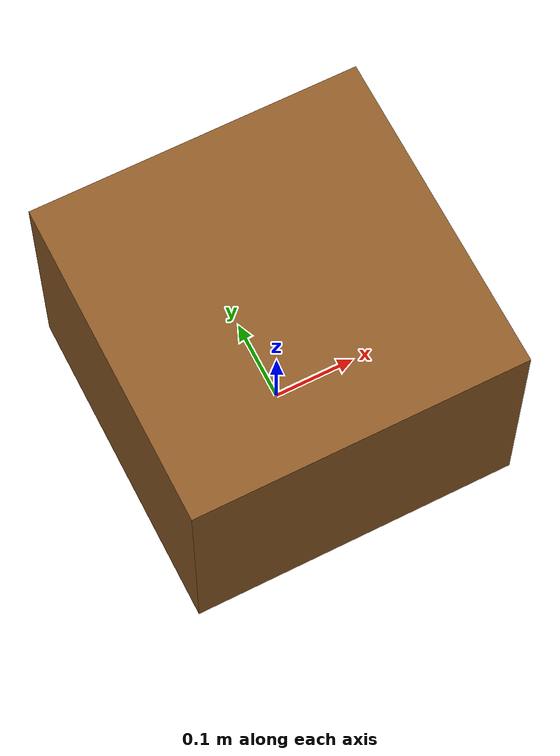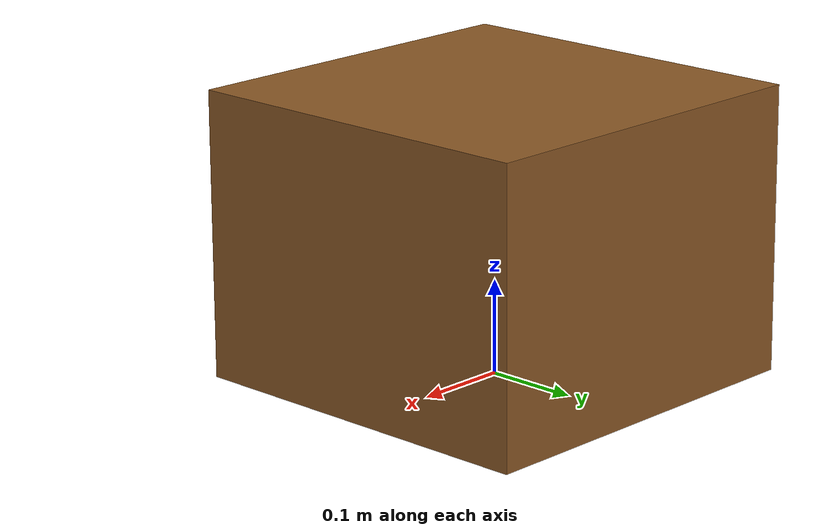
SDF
<?xml version="1.0"?>
<sdf version="1.8">
  <!-- Text-only CI fixture: same 400x400x300 mm envelope and 3 kg mass as the
       generated large box, but no organizer-provided binary STL in git. -->
  <model name="item_box_400x400x300">
    <link name="link">
      <inertial>
        <pose>0 0 0.15 0 0 0</pose>
        <mass>3.0</mass>
        <inertia>
          <ixx>0.0625</ixx><iyy>0.0625</iyy><izz>0.0800</izz>
          <ixy>0</ixy><ixz>0</ixz><iyz>0</iyz>
        </inertia>
      </inertial>
      <collision name="collision">
        <pose>0 0 0.15 0 0 0</pose>
        <geometry><box><size>0.4 0.4 0.3</size></box></geometry>
        <surface><friction><ode><mu>0.8</mu><mu2>0.8</mu2></ode></friction></surface>
      </collision>
      <visual name="visual">
        <pose>0 0 0.15 0 0 0</pose>
        <geometry><box><size>0.4 0.4 0.3</size></box></geometry>
        <material><ambient>0.55 0.35 0.15 1</ambient><diffuse>0.55 0.35 0.15 1</diffuse></material>
      </visual>
    </link>
  </model>
</sdf>
